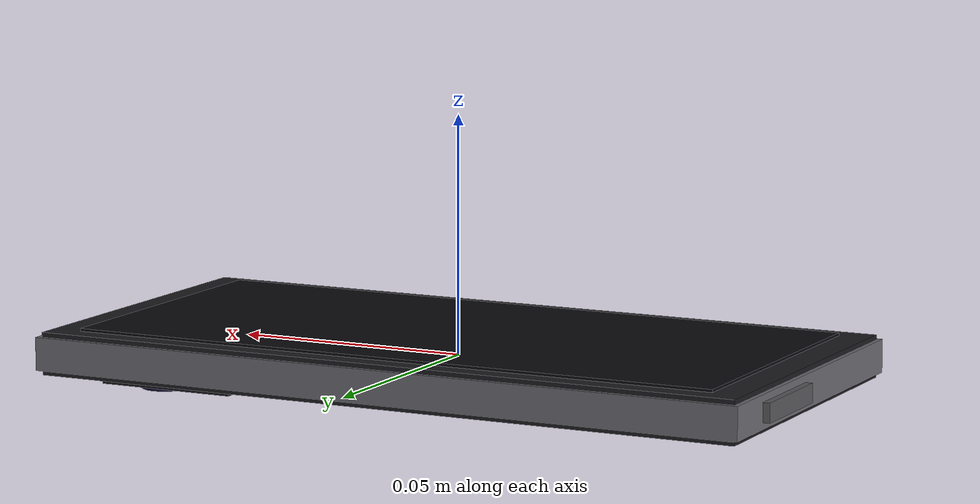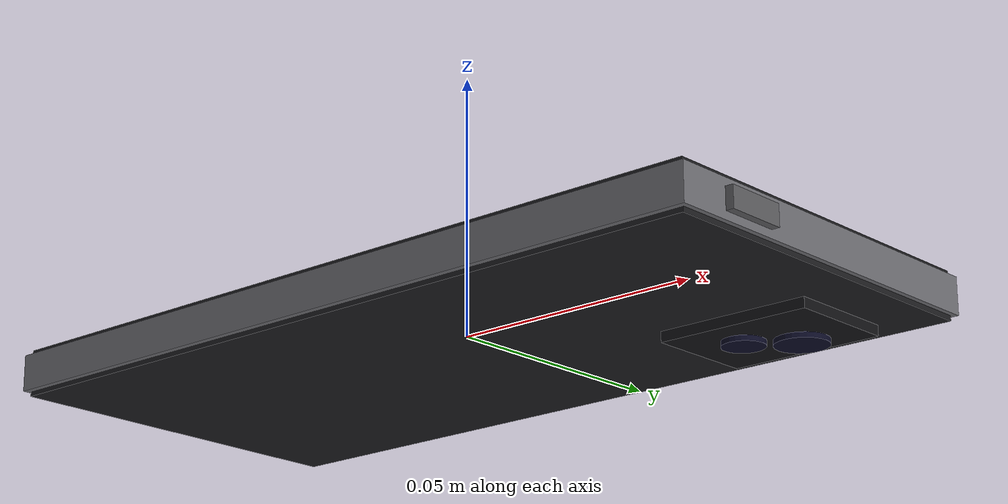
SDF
<?xml version="1.0"?>
<sdf version="1.8">
  <model name="phone">
    <static>true</static>
    <link name="link">
      <collision name="c">
        <geometry><box><size>0.155 0.075 0.009</size></box></geometry>
      </collision>

      <!-- Cuerpo principal (negro mate) -->
      <visual name="body">
        <geometry><box><size>0.155 0.075 0.009</size></box></geometry>
        <material>
          <ambient>0.07 0.07 0.08 1</ambient>
          <diffuse>0.11 0.11 0.12 1</diffuse>
          <specular>0.55 0.55 0.60 1</specular>
        </material>
      </visual>

      <!-- Marco lateral (gris aluminio) -->
      <visual name="frame">
        <geometry><box><size>0.157 0.077 0.007</size></box></geometry>
        <material>
          <ambient>0.28 0.28 0.29 1</ambient>
          <diffuse>0.42 0.42 0.44 1</diffuse>
          <specular>0.85 0.85 0.88 1</specular>
        </material>
      </visual>

      <!-- Pantalla (en la cara +Z del cuerpo; queda abajo cuando R=π) -->
      <visual name="screen">
        <pose>0 0 0.0046 0 0 0</pose>
        <geometry><box><size>0.142 0.066 0.001</size></box></geometry>
        <material>
          <ambient>0.02 0.02 0.04 1</ambient>
          <diffuse>0.04 0.04 0.06 1</diffuse>
          <specular>0.95 0.95 1.00 1</specular>
        </material>
      </visual>

      <!-- Módulo de cámara trasera (cara -Z; queda arriba cuando R=π) -->
      <visual name="camera_module">
        <pose>0.052 0.020 -0.005 0 0 0</pose>
        <geometry><box><size>0.030 0.022 0.003</size></box></geometry>
        <material>
          <ambient>0.04 0.04 0.05 1</ambient>
          <diffuse>0.07 0.07 0.08 1</diffuse>
          <specular>0.80 0.80 0.85 1</specular>
        </material>
      </visual>
      <!-- Lente 1 -->
      <visual name="lens1">
        <pose>0.056 0.024 -0.007 0 0 0</pose>
        <geometry><cylinder><radius>0.005</radius><length>0.001</length></cylinder></geometry>
        <material>
          <ambient>0.02 0.02 0.08 1</ambient>
          <diffuse>0.04 0.04 0.14 1</diffuse>
          <specular>1.0 1.0 1.0 1</specular>
        </material>
      </visual>
      <!-- Lente 2 -->
      <visual name="lens2">
        <pose>0.048 0.018 -0.007 0 0 0</pose>
        <geometry><cylinder><radius>0.004</radius><length>0.001</length></cylinder></geometry>
        <material>
          <ambient>0.02 0.02 0.08 1</ambient>
          <diffuse>0.04 0.04 0.14 1</diffuse>
          <specular>1.0 1.0 1.0 1</specular>
        </material>
      </visual>

      <!-- Botón lateral de encendido -->
      <visual name="power_button">
        <pose>0.079 -0.022 0 0 0 0</pose>
        <geometry><box><size>0.002 0.012 0.004</size></box></geometry>
        <material>
          <ambient>0.22 0.22 0.23 1</ambient>
          <diffuse>0.35 0.35 0.36 1</diffuse>
          <specular>0.80 0.80 0.80 1</specular>
        </material>
      </visual>

      <!-- Botón de volumen (doble) -->
      <visual name="vol_button">
        <pose>-0.079 0.015 0 0 0 0</pose>
        <geometry><box><size>0.002 0.022 0.004</size></box></geometry>
        <material>
          <ambient>0.22 0.22 0.23 1</ambient>
          <diffuse>0.35 0.35 0.36 1</diffuse>
          <specular>0.80 0.80 0.80 1</specular>
        </material>
      </visual>
    </link>
  </model>
</sdf>
